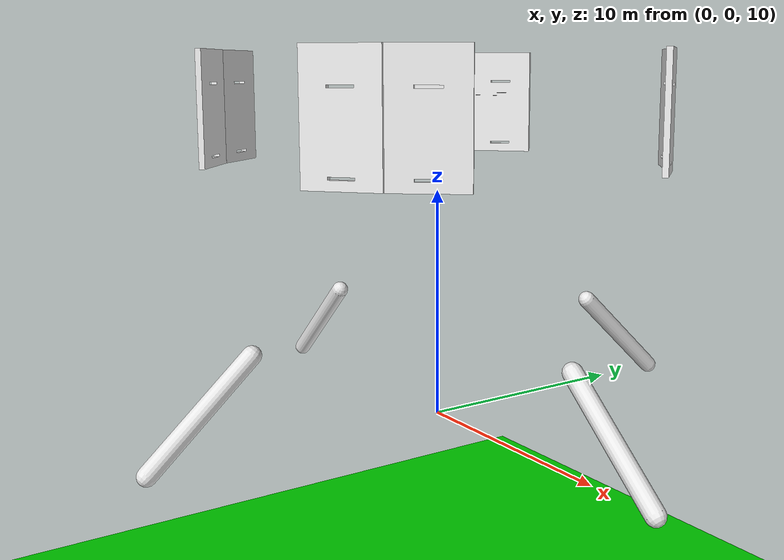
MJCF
<mujoco model="Task2">

    <include file="mCLARI_extra_simplified.xml"/>

    <worldbody>

        <light diffuse="1 1 1" pos="0 0 10000" dir="0 0 -1"/>
        <geom conaffinity="1" name="floor_oily" type="plane" size="1000 1000 0.1" friction="0.1 0.1 0.1" rgba = "0.0 0.9 0.0 0.8"/>

    </worldbody>

</mujoco>

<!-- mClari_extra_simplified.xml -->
<mujoco>
	<compiler angle="degree" coordinate="local" inertiafromgeom="true"/>
	<asset>
		<mesh file="STL_files/p_leg_frame_segment_extension-1.STL"/>
		<mesh file="STL_files/p_leg_frame_segment_extension-2.STL"/>
	</asset>
	<default>
		<joint armature="0.01" damping="0.002" limited="true"/>
		<!--joint springdamper="0.25 0.1 " limited="true"/-->
		<geom conaffinity="0" condim="3" density="0.03" friction="1 0.5 0.5" margin="0.01" rgba="0.8 0.6 0.4 1"/>
	</default>
	<option gravity="0 0 -9.810"/>

	<worldbody>
		<light diffuse="1 1 1" pos="0 0 1000" dir="0 0 -1"/>

		<body pos="-6.985 0.254 10" euler ="90 0 0" name = "p_leg_frame_segment_extension-1_1" >

			<inertial pos="7.144 11.681 7.62" mass="0.24"/>
			<geom type="mesh" mesh="p_leg_frame_segment_extension-1" rgba="0.9 0.9 0.9 1"/>
			<joint type= "free"/>

			<body pos="0 0 0" euler ="0 0 0" name="leg_ef_1" >
				<geom fromto="6.985 4.047 9.106 6.974 0.051 13.48" name="leg_1" size="0.4" type="capsule" rgba="0.9 0.9 0.9 1" density="0.01"/>
				<joint axis="1 0 0" pos = "6.985 4.047 9.106" range = "-5 5" name= "lift_1"/>
				<joint axis="0 0 1" pos = "6.985 4.047 9.106" range = "-5 5" name= "swing_1"/>
			</body>

			<body pos="0 0 0" euler ="0 0 0" name="p_leg_frame_segment_extension-2_1" >
				<geom type="mesh" mesh="p_leg_frame_segment_extension-2" rgba="0.9 0.9 0.9 1"/>
			</body>

			<site name = "s1" pos="6.984 14.141 4.37" />
		</body>

		<body pos="-0.254 -6.985 10" euler ="90 90 0" name = "p_leg_frame_segment_extension-1_2" >

			<inertial pos="7.144 11.681 7.62" mass="0.24"/>
			<geom type="mesh" mesh="p_leg_frame_segment_extension-1" rgba="0.9 0.9 0.9 1"/>
			<joint type= "free"/>

			<body pos="0 0 0" euler ="0 0 0" name="leg_ef_2" >
				<geom fromto="6.985 4.047 9.106 6.974 0.051 13.48" name="leg_2" size="0.4" type="capsule" rgba="0.9 0.9 0.9 1" density="0.01"/>
				<joint axis="1 0 0" pos = "6.985 4.047 9.106" range = "-5 5" name= "lift_2"/>
				<joint axis="0 0 1" pos = "6.985 4.047 9.106" range = "-5 5" name= "swing_2"/>
			</body>

			<body pos="0 0 0" euler ="0 0 0" name="p_leg_frame_segment_extension-2_2" >
				<geom type="mesh" mesh="p_leg_frame_segment_extension-2" rgba="0.9 0.9 0.9 1"/>
			</body>

			<site name = "s2" pos="6.984 14.141 4.37" />
		</body>

		<body pos="6.985 -0.254 10" euler ="90 180 0" name = "p_leg_frame_segment_extension-1_3" >

			<inertial pos="7.144 11.681 7.62" mass="0.24"/>
			<geom type="mesh" mesh="p_leg_frame_segment_extension-1" rgba="0.9 0.9 0.9 1"/>
			<joint type= "free"/>

			<body pos="0 0 0" euler ="0 0 0" name="leg_ef_3" >
				<geom fromto="6.985 4.047 9.106 6.974 0.051 13.48" name="leg_3" size="0.4" type="capsule" rgba="0.9 0.9 0.9 1" density="0.01"/>
				<joint axis="1 0 0" pos = "6.985 4.047 9.106" range = "-5 5" name= "lift_3"/>
				<joint axis="0 0 1" pos = "6.985 4.047 9.106" range = "-5 5" name= "swing_3"/>
			</body>

			<body pos="0 0 0" euler ="0 0 0" name="p_leg_frame_segment_extension-2_3" >
				<geom type="mesh" mesh="p_leg_frame_segment_extension-2" rgba="0.9 0.9 0.9 1"/>
			</body>

			<site name = "s3" pos="6.984 14.141 4.37" />

		</body>

		<body pos="0.254 6.985 10" euler ="90 270 0" name = "p_leg_frame_segment_extension-1_4" >

			<inertial pos="7.144 11.681 7.62" mass="0.24"/>
			<geom type="mesh" mesh="p_leg_frame_segment_extension-1" rgba="0.9 0.9 0.9 1"/>
			<joint type= "free"/>

			<body pos="0 0 0" euler ="0 0 0" name="leg_ef_4" >
				<geom fromto="6.985 4.047 9.106 6.974 0.051 13.48" name="leg_4" size="0.4" type="capsule" rgba="0.9 0.9 0.9 1" density="0.01"/>
				<joint axis="1 0 0" pos = "6.985 4.047 9.106" range = "-5 5" name= "lift_4"/>
				<joint axis="0 0 1" pos = "6.985 4.047 9.106" range = "-5 5" name= "swing_4"/>
			</body>

			<body pos="0 0 0" euler ="0 0 0" name="p_leg_frame_segment_extension-2_4" >
				<geom type="mesh" mesh="p_leg_frame_segment_extension-2" rgba="0.9 0.9 0.9 1"/>
			</body>

			<site name = "s4" pos="6.984 14.141 4.37" />
		</body>

	</worldbody>

    <!-- equalities-->

    <equality>

		<!-- interleg-->
		<connect name="joint_1_1" body1="p_leg_frame_segment_extension-1_1" body2="p_leg_frame_segment_extension-2_4" anchor=" 0.184 16.021 7.05 "/>
		<connect name="joint_1_2" body1="p_leg_frame_segment_extension-1_1" body2="p_leg_frame_segment_extension-2_4" anchor=" 0.184 11.021 7.05 "/>
		<connect name="joint_2_1" body1="p_leg_frame_segment_extension-1_4" body2="p_leg_frame_segment_extension-2_3" anchor=" 0.184 16.021 7.05 "/>
		<connect name="joint_2_2" body1="p_leg_frame_segment_extension-1_4" body2="p_leg_frame_segment_extension-2_3" anchor=" 0.184 11.021 7.05 "/>
		<connect name="joint_3_1" body1="p_leg_frame_segment_extension-1_3" body2="p_leg_frame_segment_extension-2_2" anchor=" 0.184 16.021 7.05 "/>
		<connect name="joint_3_2" body1="p_leg_frame_segment_extension-1_3" body2="p_leg_frame_segment_extension-2_2" anchor=" 0.184 11.021 7.05 "/>
		<connect name="joint_4_1" body1="p_leg_frame_segment_extension-1_2" body2="p_leg_frame_segment_extension-2_1" anchor=" 0.184 16.021 7.05 "/>
		<connect name="joint_4_2" body1="p_leg_frame_segment_extension-1_2" body2="p_leg_frame_segment_extension-2_1" anchor=" 0.184 11.021 7.05 "/>

	</equality>

	<!-- actuators -->

	<actuator>
		<motor ctrllimited="true" ctrlrange="-1.0 1.0" name="lift_1" joint="lift_1" gear="300.0" />
		<motor ctrllimited="true" ctrlrange="-1.0 1.0" name="swing_1" joint="swing_1" gear="300.0" />
		<motor ctrllimited="true" ctrlrange="-1.0 1.0" name="lift_2" joint="lift_2" gear="300.0" />
		<motor ctrllimited="true" ctrlrange="-1.0 1.0" name="swing_2" joint="swing_2" gear="300.0" />
		<motor ctrllimited="true" ctrlrange="-1.0 1.0" name="lift_3" joint="lift_3" gear="300.0" />
		<motor ctrllimited="true" ctrlrange="-1.0 1.0" name="swing_3" joint="swing_3" gear="300.0" />
		<motor ctrllimited="true" ctrlrange="-1.0 1.0" name="lift_4" joint="lift_4" gear="300.0" />
		<motor ctrllimited="true" ctrlrange="-1.0 1.0" name="swing_4" joint="swing_4" gear="300.0" />
	</actuator>

	<tendon>
		<spatial name="spring_tendon_1" limited="true" range="0.0 8.0" stiffness="1.0">
		  <site site="s1"/>
		  <site site="s3"/>
		</spatial>
		<spatial name="spring_tendon_2" limited="true" range="0.0 8.0" stiffness="1.0" >
		  <site site="s2"/>
		  <site site="s4"/>
		</spatial>
	</tendon>

</mujoco>
